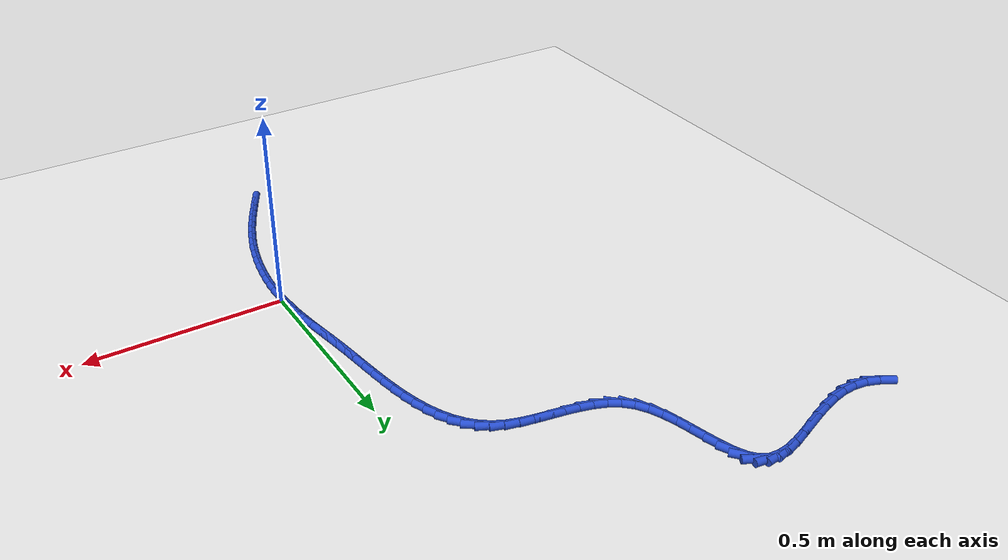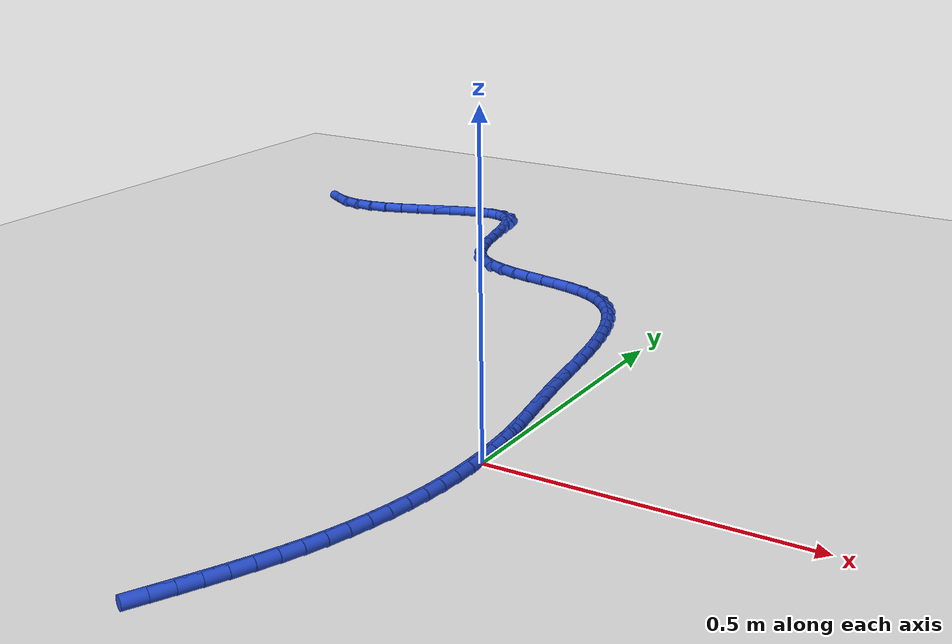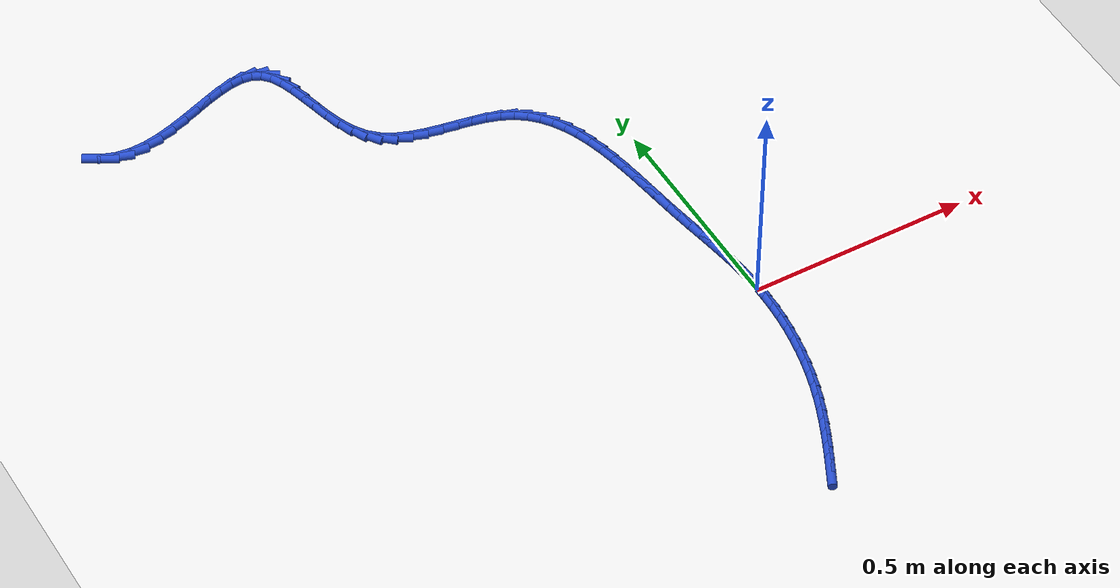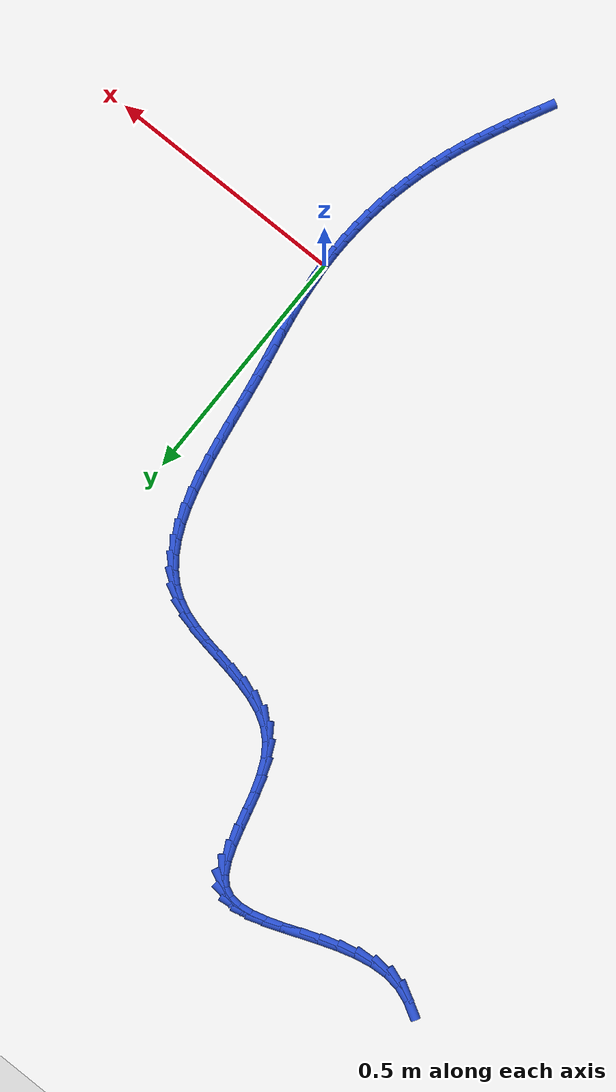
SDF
<sdf version="1.6">
 <world name="default">
  <model name="ground_plane">
   <static>1</static>
   <link name="link">
    <collision name="collision">
     <geometry><plane><normal>0 0 1</normal><size>100 100</size></plane></geometry>
     <surface><friction><ode><mu>100</mu><mu2>50</mu2></ode></friction></surface>
    </collision>
    <visual name="visual">
     <cast_shadows>0</cast_shadows>
     <geometry><plane><normal>0 0 1</normal><size>100 100</size></plane></geometry>
     <material>
      <script><uri>file://media/materials/scripts/gazebo.material</uri><name>Gazebo/WhiteGlow</name></script>
     </material>
    </visual>
   </link>
  </model>
  <model name="line">
   <link name="link_0">
    <pose>-1.0408340855860843e-17 4.85722573273506e-17 0.01 0 1.57 -1.5140892674336408</pose>
    <collision name="collision">
     <geometry><cylinder><radius>0.01</radius><length>0.08</length></cylinder></geometry>
    </collision>
    <visual name="visual">
     <material>
      <script><name>Gazebo/Blue</name><uri>file://media/materials/scripts/gazebo.material</uri></script>
     </material>
     <geometry><cylinder><radius>0.01</radius><length>0.08</length></cylinder></geometry>
    </visual>
   </link>
   <link name="link_1">
    <pose>-0.0017822990523047434 0.0313962357053206 0.01 0 1.57 -1.4762455724888102</pose>
    <collision name="collision">
     <geometry><cylinder><radius>0.01</radius><length>0.08</length></cylinder></geometry>
    </collision>
    <visual name="visual">
     <material>
      <script><name>Gazebo/Blue</name><uri>file://media/materials/scripts/gazebo.material</uri></script>
     </material>
     <geometry><cylinder><radius>0.01</radius><length>0.08</length></cylinder></geometry>
    </visual>
   </link>
   <link name="link_2">
    <pose>-0.004735691657988238 0.06253915381352197 0.01 0 1.57 -1.4450884632466419</pose>
    <collision name="collision">
     <geometry><cylinder><radius>0.01</radius><length>0.08</length></cylinder></geometry>
    </collision>
    <visual name="visual">
     <material>
      <script><name>Gazebo/Blue</name><uri>file://media/materials/scripts/gazebo.material</uri></script>
     </material>
     <geometry><cylinder><radius>0.01</radius><length>0.08</length></cylinder></geometry>
    </visual>
   </link>
   <link name="link_3">
    <pose>-0.008661138716409207 0.09360123603166874 0.01 0 1.57 -1.4211090032281013</pose>
    <collision name="collision">
     <geometry><cylinder><radius>0.01</radius><length>0.08</length></cylinder></geometry>
    </collision>
    <visual name="visual">
     <material>
      <script><name>Gazebo/Blue</name><uri>file://media/materials/scripts/gazebo.material</uri></script>
     </material>
     <geometry><cylinder><radius>0.01</radius><length>0.08</length></cylinder></geometry>
    </visual>
   </link>
   <link name="link_4">
    <pose>-0.013359601126926387 0.12475496406682555 0.01 0 1.57 -1.40452897458954</pose>
    <collision name="collision">
     <geometry><cylinder><radius>0.01</radius><length>0.08</length></cylinder></geometry>
    </collision>
    <visual name="visual">
     <material>
      <script><name>Gazebo/Blue</name><uri>file://media/materials/scripts/gazebo.material</uri></script>
     </material>
     <geometry><cylinder><radius>0.01</radius><length>0.08</length></cylinder></geometry>
    </visual>
   </link>
   <link name="link_5">
    <pose>-0.018632039788898498 0.1561728196260569 0.01 0 1.57 -1.3953326870396339</pose>
    <collision name="collision">
     <geometry><cylinder><radius>0.01</radius><length>0.08</length></cylinder></geometry>
    </collision>
    <visual name="visual">
     <material>
      <script><name>Gazebo/Blue</name><uri>file://media/materials/scripts/gazebo.material</uri></script>
     </material>
     <geometry><cylinder><radius>0.01</radius><length>0.08</length></cylinder></geometry>
    </visual>
   </link>
   <link name="link_6">
    <pose>-0.024279415601684257 0.1880272844164274 0.01 0 1.57 -1.3933051526836118</pose>
    <collision name="collision">
     <geometry><cylinder><radius>0.01</radius><length>0.08</length></cylinder></geometry>
    </collision>
    <visual name="visual">
     <material>
      <script><name>Gazebo/Blue</name><uri>file://media/materials/scripts/gazebo.material</uri></script>
     </material>
     <geometry><cylinder><radius>0.01</radius><length>0.08</length></cylinder></geometry>
    </visual>
   </link>
   <link name="link_7">
    <pose>-0.030102689464642396 0.22049084014500175 0.01 0 1.57 -1.3980691826053695</pose>
    <collision name="collision">
     <geometry><cylinder><radius>0.01</radius><length>0.08</length></cylinder></geometry>
    </collision>
    <visual name="visual">
     <material>
      <script><name>Gazebo/Blue</name><uri>file://media/materials/scripts/gazebo.material</uri></script>
     </material>
     <geometry><cylinder><radius>0.01</radius><length>0.08</length></cylinder></geometry>
    </visual>
   </link>
   <link name="link_8">
    <pose>-0.035902822277131645 0.2537359685188444 0.01 0 1.57 -1.409102124069572</pose>
    <collision name="collision">
     <geometry><cylinder><radius>0.01</radius><length>0.08</length></cylinder></geometry>
    </collision>
    <visual name="visual">
     <material>
      <script><name>Gazebo/Blue</name><uri>file://media/materials/scripts/gazebo.material</uri></script>
     </material>
     <geometry><cylinder><radius>0.01</radius><length>0.08</length></cylinder></geometry>
    </visual>
   </link>
   <link name="link_9">
    <pose>-0.04148124559726623 0.287934611946852 0.01 0 1.57 -1.4214969574494418</pose>
    <collision name="collision">
     <geometry><cylinder><radius>0.01</radius><length>0.08</length></cylinder></geometry>
    </collision>
    <visual name="visual">
     <material>
      <script><name>Gazebo/Blue</name><uri>file://media/materials/scripts/gazebo.material</uri></script>
     </material>
     <geometry><cylinder><radius>0.01</radius><length>0.08</length></cylinder></geometry>
    </visual>
   </link>
   <link name="link_10">
    <pose>-0.046771823977987105 0.3231069662260764 0.01 0 1.57 -1.425215076478316</pose>
    <collision name="collision">
     <geometry><cylinder><radius>0.01</radius><length>0.08</length></cylinder></geometry>
    </collision>
    <visual name="visual">
     <material>
      <script><name>Gazebo/Blue</name><uri>file://media/materials/scripts/gazebo.material</uri></script>
     </material>
     <geometry><cylinder><radius>0.01</radius><length>0.08</length></cylinder></geometry>
    </visual>
   </link>
   <link name="link_11">
    <pose>-0.05202181707179196 0.35891412748517626 0.01 0 1.57 -1.4193484649039652</pose>
    <collision name="collision">
     <geometry><cylinder><radius>0.01</radius><length>0.08</length></cylinder></geometry>
    </collision>
    <visual name="visual">
     <material>
      <script><name>Gazebo/Blue</name><uri>file://media/materials/scripts/gazebo.material</uri></script>
     </material>
     <geometry><cylinder><radius>0.01</radius><length>0.08</length></cylinder></geometry>
    </visual>
   </link>
   <link name="link_12">
    <pose>-0.05752381283932963 0.3949652530048548 0.01 0 1.57 -1.4039532100160061</pose>
    <collision name="collision">
     <geometry><cylinder><radius>0.01</radius><length>0.08</length></cylinder></geometry>
    </collision>
    <visual name="visual">
     <material>
      <script><name>Gazebo/Blue</name><uri>file://media/materials/scripts/gazebo.material</uri></script>
     </material>
     <geometry><cylinder><radius>0.01</radius><length>0.08</length></cylinder></geometry>
    </visual>
   </link>
   <link name="link_13">
    <pose>-0.06357039924124894 0.4308695000658154 0.01 0 1.57 -1.378559220523546</pose>
    <collision name="collision">
     <geometry><cylinder><radius>0.01</radius><length>0.08</length></cylinder></geometry>
    </collision>
    <visual name="visual">
     <material>
      <script><name>Gazebo/Blue</name><uri>file://media/materials/scripts/gazebo.material</uri></script>
     </material>
     <geometry><cylinder><radius>0.01</radius><length>0.08</length></cylinder></geometry>
    </visual>
   </link>
   <link name="link_14">
    <pose>-0.07045416423819872 0.4662360259487611 0.01 0 1.57 -1.3421701288273173</pose>
    <collision name="collision">
     <geometry><cylinder><radius>0.01</radius><length>0.08</length></cylinder></geometry>
    </collision>
    <visual name="visual">
     <material>
      <script><name>Gazebo/Blue</name><uri>file://media/materials/scripts/gazebo.material</uri></script>
     </material>
     <geometry><cylinder><radius>0.01</radius><length>0.08</length></cylinder></geometry>
    </visual>
   </link>
   <link name="link_15">
    <pose>-0.07846769579082782 0.5006739879343955 0.01 0 1.57 -1.2932382194072782</pose>
    <collision name="collision">
     <geometry><cylinder><radius>0.01</radius><length>0.08</length></cylinder></geometry>
    </collision>
    <visual name="visual">
     <material>
      <script><name>Gazebo/Blue</name><uri>file://media/materials/scripts/gazebo.material</uri></script>
     </material>
     <geometry><cylinder><radius>0.01</radius><length>0.08</length></cylinder></geometry>
    </visual>
   </link>
   <link name="link_16">
    <pose>-0.0879035818597851 0.5337925433034216 0.01 0 1.57 -1.2296492479981362</pose>
    <collision name="collision">
     <geometry><cylinder><radius>0.01</radius><length>0.08</length></cylinder></geometry>
    </collision>
    <visual name="visual">
     <material>
      <script><name>Gazebo/Blue</name><uri>file://media/materials/scripts/gazebo.material</uri></script>
     </material>
     <geometry><cylinder><radius>0.01</radius><length>0.08</length></cylinder></geometry>
    </visual>
   </link>
   <link name="link_17">
    <pose>-0.09905441040571937 0.5652008493365427 0.01 0 1.57 -1.1487907853533612</pose>
    <collision name="collision">
     <geometry><cylinder><radius>0.01</radius><length>0.08</length></cylinder></geometry>
    </collision>
    <visual name="visual">
     <material>
      <script><name>Gazebo/Blue</name><uri>file://media/materials/scripts/gazebo.material</uri></script>
     </material>
     <geometry><cylinder><radius>0.01</radius><length>0.08</length></cylinder></geometry>
    </visual>
   </link>
   <link name="link_18">
    <pose>-0.11221276938927945 0.5945080633144622 0.01 0 1.57 -1.0478503527564522</pose>
    <collision name="collision">
     <geometry><cylinder><radius>0.01</radius><length>0.08</length></cylinder></geometry>
    </collision>
    <visual name="visual">
     <material>
      <script><name>Gazebo/Blue</name><uri>file://media/materials/scripts/gazebo.material</uri></script>
     </material>
     <geometry><cylinder><radius>0.01</radius><length>0.08</length></cylinder></geometry>
    </visual>
   </link>
   <link name="link_19">
    <pose>-0.1276712467711142 0.621323342517883 0.01 0 1.57 -0.924578249994057</pose>
    <collision name="collision">
     <geometry><cylinder><radius>0.01</radius><length>0.08</length></cylinder></geometry>
    </collision>
    <visual name="visual">
     <material>
      <script><name>Gazebo/Blue</name><uri>file://media/materials/scripts/gazebo.material</uri></script>
     </material>
     <geometry><cylinder><radius>0.01</radius><length>0.08</length></cylinder></geometry>
    </visual>
   </link>
   <link name="link_20">
    <pose>-0.14572243051187242 0.6452558442275088 0.01 0 1.57 -0.7787245237031976</pose>
    <collision name="collision">
     <geometry><cylinder><radius>0.01</radius><length>0.08</length></cylinder></geometry>
    </collision>
    <visual name="visual">
     <material>
      <script><name>Gazebo/Blue</name><uri>file://media/materials/scripts/gazebo.material</uri></script>
     </material>
     <geometry><cylinder><radius>0.01</radius><length>0.08</length></cylinder></geometry>
    </visual>
   </link>
   <link name="link_21">
    <pose>-0.16665890857220295 0.6659147257240425 0.01 0 1.57 -0.6139018739002147</pose>
    <collision name="collision">
     <geometry><cylinder><radius>0.01</radius><length>0.08</length></cylinder></geometry>
    </collision>
    <visual name="visual">
     <material>
      <script><name>Gazebo/Blue</name><uri>file://media/materials/scripts/gazebo.material</uri></script>
     </material>
     <geometry><cylinder><radius>0.01</radius><length>0.08</length></cylinder></geometry>
    </visual>
   </link>
   <link name="link_22">
    <pose>-0.1907732689127547 0.6829091442881876 0.01 0 1.57 -0.4415854745839687</pose>
    <collision name="collision">
     <geometry><cylinder><radius>0.01</radius><length>0.08</length></cylinder></geometry>
    </collision>
    <visual name="visual">
     <material>
      <script><name>Gazebo/Blue</name><uri>file://media/materials/scripts/gazebo.material</uri></script>
     </material>
     <geometry><cylinder><radius>0.01</radius><length>0.08</length></cylinder></geometry>
    </visual>
   </link>
   <link name="link_23">
    <pose>-0.21830001495683102 0.6959215559074463 0.01 0 1.57 -0.303847111143719</pose>
    <collision name="collision">
     <geometry><cylinder><radius>0.01</radius><length>0.08</length></cylinder></geometry>
    </collision>
    <visual name="visual">
     <material>
      <script><name>Gazebo/Blue</name><uri>file://media/materials/scripts/gazebo.material</uri></script>
     </material>
     <geometry><cylinder><radius>0.01</radius><length>0.08</length></cylinder></geometry>
    </visual>
   </link>
   <link name="link_24">
    <pose>-0.24879967724428598 0.7054849241748193 0.01 0 1.57 -0.21723763861743337</pose>
    <collision name="collision">
     <geometry><cylinder><radius>0.01</radius><length>0.08</length></cylinder></geometry>
    </collision>
    <visual name="visual">
     <material>
      <script><name>Gazebo/Blue</name><uri>file://media/materials/scripts/gazebo.material</uri></script>
     </material>
     <geometry><cylinder><radius>0.01</radius><length>0.08</length></cylinder></geometry>
    </visual>
   </link>
   <link name="link_25">
    <pose>-0.28139856258502693 0.7126801732821364 0.01 0 1.57 -0.1732210524831926</pose>
    <collision name="collision">
     <geometry><cylinder><radius>0.01</radius><length>0.08</length></cylinder></geometry>
    </collision>
    <visual name="visual">
     <material>
      <script><name>Gazebo/Blue</name><uri>file://media/materials/scripts/gazebo.material</uri></script>
     </material>
     <geometry><cylinder><radius>0.01</radius><length>0.08</length></cylinder></geometry>
    </visual>
   </link>
   <link name="link_26">
    <pose>-0.3152157675230457 0.7185973262828409 0.01 0 1.57 -0.16619235850822497</pose>
    <collision name="collision">
     <geometry><cylinder><radius>0.01</radius><length>0.08</length></cylinder></geometry>
    </collision>
    <visual name="visual">
     <material>
      <script><name>Gazebo/Blue</name><uri>file://media/materials/scripts/gazebo.material</uri></script>
     </material>
     <geometry><cylinder><radius>0.01</radius><length>0.08</length></cylinder></geometry>
    </visual>
   </link>
   <link name="link_27">
    <pose>-0.34937038860233427 0.7243264062303774 0.01 0 1.57 -0.19478526958126113</pose>
    <collision name="collision">
     <geometry><cylinder><radius>0.01</radius><length>0.08</length></cylinder></geometry>
    </collision>
    <visual name="visual">
     <material>
      <script><name>Gazebo/Blue</name><uri>file://media/materials/scripts/gazebo.material</uri></script>
     </material>
     <geometry><cylinder><radius>0.01</radius><length>0.08</length></cylinder></geometry>
    </visual>
   </link>
   <link name="link_28">
    <pose>-0.38298152236688415 0.730957436178189 0.01 0 1.57 -0.261758550055799</pose>
    <collision name="collision">
     <geometry><cylinder><radius>0.01</radius><length>0.08</length></cylinder></geometry>
    </collision>
    <visual name="visual">
     <material>
      <script><name>Gazebo/Blue</name><uri>file://media/materials/scripts/gazebo.material</uri></script>
     </material>
     <geometry><cylinder><radius>0.01</radius><length>0.08</length></cylinder></geometry>
    </visual>
   </link>
   <link name="link_29">
    <pose>-0.4151682653606876 0.7395804391797203 0.01 0 1.57 -0.37334342968593964</pose>
    <collision name="collision">
     <geometry><cylinder><radius>0.01</radius><length>0.08</length></cylinder></geometry>
    </collision>
    <visual name="visual">
     <material>
      <script><name>Gazebo/Blue</name><uri>file://media/materials/scripts/gazebo.material</uri></script>
     </material>
     <geometry><cylinder><radius>0.01</radius><length>0.08</length></cylinder></geometry>
    </visual>
   </link>
   <link name="link_30">
    <pose>-0.4450497141277363 0.7512854382884149 0.01 0 1.57 -0.5365507530079408</pose>
    <collision name="collision">
     <geometry><cylinder><radius>0.01</radius><length>0.08</length></cylinder></geometry>
    </collision>
    <visual name="visual">
     <material>
      <script><name>Gazebo/Blue</name><uri>file://media/materials/scripts/gazebo.material</uri></script>
     </material>
     <geometry><cylinder><radius>0.01</radius><length>0.08</length></cylinder></geometry>
    </visual>
   </link>
   <link name="link_31">
    <pose>-0.47174496521202197 0.7671624565577166 0.01 0 1.57 -0.751378900271499</pose>
    <collision name="collision">
     <geometry><cylinder><radius>0.01</radius><length>0.08</length></cylinder></geometry>
    </collision>
    <visual name="visual">
     <material>
      <script><name>Gazebo/Blue</name><uri>file://media/materials/scripts/gazebo.material</uri></script>
     </material>
     <geometry><cylinder><radius>0.01</radius><length>0.08</length></cylinder></geometry>
    </visual>
   </link>
   <link name="link_32">
    <pose>-0.49437328444214507 0.7883012753539985 0.01 0 1.57 -0.9794375298426329</pose>
    <collision name="collision">
     <geometry><cylinder><radius>0.01</radius><length>0.08</length></cylinder></geometry>
    </collision>
    <visual name="visual">
     <material>
      <script><name>Gazebo/Blue</name><uri>file://media/materials/scripts/gazebo.material</uri></script>
     </material>
     <geometry><cylinder><radius>0.01</radius><length>0.08</length></cylinder></geometry>
    </visual>
   </link>
   <link name="link_33">
    <pose>-0.512452076773353 0.815223254139059 0.01 0 1.57 -1.144041291427519</pose>
    <collision name="collision">
     <geometry><cylinder><radius>0.01</radius><length>0.08</length></cylinder></geometry>
    </collision>
    <visual name="visual">
     <material>
      <script><name>Gazebo/Blue</name><uri>file://media/materials/scripts/gazebo.material</uri></script>
     </material>
     <geometry><cylinder><radius>0.01</radius><length>0.08</length></cylinder></geometry>
    </visual>
   </link>
   <link name="link_34">
    <pose>-0.5267487053594899 0.846665191219239 0.01 0 1.57 -1.2470378099294164</pose>
    <collision name="collision">
     <geometry><cylinder><radius>0.01</radius><length>0.08</length></cylinder></geometry>
    </collision>
    <visual name="visual">
     <material>
      <script><name>Gazebo/Blue</name><uri>file://media/materials/scripts/gazebo.material</uri></script>
     </material>
     <geometry><cylinder><radius>0.01</radius><length>0.08</length></cylinder></geometry>
    </visual>
   </link>
   <link name="link_35">
    <pose>-0.5382751914088753 0.8810145874116686 0.01 0 1.57 -1.3033127828432685</pose>
    <collision name="collision">
     <geometry><cylinder><radius>0.01</radius><length>0.08</length></cylinder></geometry>
    </collision>
    <visual name="visual">
     <material>
      <script><name>Gazebo/Blue</name><uri>file://media/materials/scripts/gazebo.material</uri></script>
     </material>
     <geometry><cylinder><radius>0.01</radius><length>0.08</length></cylinder></geometry>
    </visual>
   </link>
   <link name="link_36">
    <pose>-0.5480435561298285 0.9166589435334778 0.01 0 1.57 -1.3207472361059984</pose>
    <collision name="collision">
     <geometry><cylinder><radius>0.01</radius><length>0.08</length></cylinder></geometry>
    </collision>
    <visual name="visual">
     <material>
      <script><name>Gazebo/Blue</name><uri>file://media/materials/scripts/gazebo.material</uri></script>
     </material>
     <geometry><cylinder><radius>0.01</radius><length>0.08</length></cylinder></geometry>
    </visual>
   </link>
   <link name="link_37">
    <pose>-0.5570658207306691 0.9519857604017972 0.01 0 1.57 -1.2995353078400214</pose>
    <collision name="collision">
     <geometry><cylinder><radius>0.01</radius><length>0.08</length></cylinder></geometry>
    </collision>
    <visual name="visual">
     <material>
      <script><name>Gazebo/Blue</name><uri>file://media/materials/scripts/gazebo.material</uri></script>
     </material>
     <geometry><cylinder><radius>0.01</radius><length>0.08</length></cylinder></geometry>
    </visual>
   </link>
   <link name="link_38">
    <pose>-0.566354006419717 0.985382538833757 0.01 0 1.57 -1.2306301543189473</pose>
    <collision name="collision">
     <geometry><cylinder><radius>0.01</radius><length>0.08</length></cylinder></geometry>
    </collision>
    <visual name="visual">
     <material>
      <script><name>Gazebo/Blue</name><uri>file://media/materials/scripts/gazebo.material</uri></script>
     </material>
     <geometry><cylinder><radius>0.01</radius><length>0.08</length></cylinder></geometry>
    </visual>
   </link>
   <link name="link_39">
    <pose>-0.5769201344052914 1.0152367796464876 0.01 0 1.57 -1.0908785751996821</pose>
    <collision name="collision">
     <geometry><cylinder><radius>0.01</radius><length>0.08</length></cylinder></geometry>
    </collision>
    <visual name="visual">
     <material>
      <script><name>Gazebo/Blue</name><uri>file://media/materials/scripts/gazebo.material</uri></script>
     </material>
     <geometry><cylinder><radius>0.01</radius><length>0.08</length></cylinder></geometry>
    </visual>
   </link>
   <link name="link_40">
    <pose>-0.589776225895712 1.039935983657119 0.01 0 1.57 -0.8373784345812626</pose>
    <collision name="collision">
     <geometry><cylinder><radius>0.01</radius><length>0.08</length></cylinder></geometry>
    </collision>
    <visual name="visual">
     <material>
      <script><name>Gazebo/Blue</name><uri>file://media/materials/scripts/gazebo.material</uri></script>
     </material>
     <geometry><cylinder><radius>0.01</radius><length>0.08</length></cylinder></geometry>
    </visual>
   </link>
   <link name="link_41">
    <pose>-0.6059343020992981 1.0578676516827814 0.01 0 1.57 -0.4551619494992559</pose>
    <collision name="collision">
     <geometry><cylinder><radius>0.01</radius><length>0.08</length></cylinder></geometry>
    </collision>
    <visual name="visual">
     <material>
      <script><name>Gazebo/Blue</name><uri>file://media/materials/scripts/gazebo.material</uri></script>
     </material>
     <geometry><cylinder><radius>0.01</radius><length>0.08</length></cylinder></geometry>
    </visual>
   </link>
   <link name="link_42">
    <pose>-0.6262105241636294 1.0677915948566767 0.01 0 1.57 -0.10840177283015996</pose>
    <collision name="collision">
     <geometry><cylinder><radius>0.01</radius><length>0.08</length></cylinder></geometry>
    </collision>
    <visual name="visual">
     <material>
      <script><name>Gazebo/Blue</name><uri>file://media/materials/scripts/gazebo.material</uri></script>
     </material>
     <geometry><cylinder><radius>0.01</radius><length>0.08</length></cylinder></geometry>
    </visual>
   </link>
   <link name="link_43">
    <pose>-0.6503922614195509 1.0704232542909442 0.01 0 1.57 0.11945580834634709</pose>
    <collision name="collision">
     <geometry><cylinder><radius>0.01</radius><length>0.08</length></cylinder></geometry>
    </collision>
    <visual name="visual">
     <material>
      <script><name>Gazebo/Blue</name><uri>file://media/materials/scripts/gazebo.material</uri></script>
     </material>
     <geometry><cylinder><radius>0.01</radius><length>0.08</length></cylinder></geometry>
    </visual>
   </link>
   <link name="link_44">
    <pose>-0.6779302681394077 1.0671179425362949 0.01 0 1.57 0.2542738200076538</pose>
    <collision name="collision">
     <geometry><cylinder><radius>0.01</radius><length>0.08</length></cylinder></geometry>
    </collision>
    <visual name="visual">
     <material>
      <script><name>Gazebo/Blue</name><uri>file://media/materials/scripts/gazebo.material</uri></script>
     </material>
     <geometry><cylinder><radius>0.01</radius><length>0.08</length></cylinder></geometry>
    </visual>
   </link>
   <link name="link_45">
    <pose>-0.708275106404956 1.0592313374784559 0.01 0 1.57 0.32849335379676337</pose>
    <collision name="collision">
     <geometry><cylinder><radius>0.01</radius><length>0.08</length></cylinder></geometry>
    </collision>
    <visual name="visual">
     <material>
      <script><name>Gazebo/Blue</name><uri>file://media/materials/scripts/gazebo.material</uri></script>
     </material>
     <geometry><cylinder><radius>0.01</radius><length>0.08</length></cylinder></geometry>
    </visual>
   </link>
   <link name="link_46">
    <pose>-0.7408773382979535 1.0481191170031552 0.01 0 1.57 0.36172732578223527</pose>
    <collision name="collision">
     <geometry><cylinder><radius>0.01</radius><length>0.08</length></cylinder></geometry>
    </collision>
    <visual name="visual">
     <material>
      <script><name>Gazebo/Blue</name><uri>file://media/materials/scripts/gazebo.material</uri></script>
     </material>
     <geometry><cylinder><radius>0.01</radius><length>0.08</length></cylinder></geometry>
    </visual>
   </link>
   <link name="link_47">
    <pose>-0.7751875259001574 1.0351369589961203 0.01 0 1.57 0.36359801487771587</pose>
    <collision name="collision">
     <geometry><cylinder><radius>0.01</radius><length>0.08</length></cylinder></geometry>
    </collision>
    <visual name="visual">
     <material>
      <script><name>Gazebo/Blue</name><uri>file://media/materials/scripts/gazebo.material</uri></script>
     </material>
     <geometry><cylinder><radius>0.01</radius><length>0.08</length></cylinder></geometry>
    </visual>
   </link>
   <link name="link_48">
    <pose>-0.8106562312933241 1.0216405413430785 0.01 0 1.57 0.3373604920326366</pose>
    <collision name="collision">
     <geometry><cylinder><radius>0.01</radius><length>0.08</length></cylinder></geometry>
    </collision>
    <visual name="visual">
     <material>
      <script><name>Gazebo/Blue</name><uri>file://media/materials/scripts/gazebo.material</uri></script>
     </material>
     <geometry><cylinder><radius>0.01</radius><length>0.08</length></cylinder></geometry>
    </visual>
   </link>
   <link name="link_49">
    <pose>-0.8467340165592113 1.0089855419297573 0.01 0 1.57 0.28169703186375755</pose>
    <collision name="collision">
     <geometry><cylinder><radius>0.01</radius><length>0.08</length></cylinder></geometry>
    </collision>
    <visual name="visual">
     <material>
      <script><name>Gazebo/Blue</name><uri>file://media/materials/scripts/gazebo.material</uri></script>
     </material>
     <geometry><cylinder><radius>0.01</radius><length>0.08</length></cylinder></geometry>
    </visual>
   </link>
   <link name="link_50">
    <pose>-0.8828714437795754 0.998527638641884 0.01 0 1.57 0.1913355445748253</pose>
    <collision name="collision">
     <geometry><cylinder><radius>0.01</radius><length>0.08</length></cylinder></geometry>
    </collision>
    <visual name="visual">
     <material>
      <script><name>Gazebo/Blue</name><uri>file://media/materials/scripts/gazebo.material</uri></script>
     </material>
     <geometry><cylinder><radius>0.01</radius><length>0.08</length></cylinder></geometry>
    </visual>
   </link>
   <link name="link_51">
    <pose>-0.9185190750361738 0.9916225093651863 0.01 0 1.57 0.05762955264114487</pose>
    <collision name="collision">
     <geometry><cylinder><radius>0.01</radius><length>0.08</length></cylinder></geometry>
    </collision>
    <visual name="visual">
     <material>
      <script><name>Gazebo/Blue</name><uri>file://media/materials/scripts/gazebo.material</uri></script>
     </material>
     <geometry><cylinder><radius>0.01</radius><length>0.08</length></cylinder></geometry>
    </visual>
   </link>
   <link name="link_52">
    <pose>-0.9531274724107635 0.9896258319853914 0.01 0 1.57 -0.1285162788359451</pose>
    <collision name="collision">
     <geometry><cylinder><radius>0.01</radius><length>0.08</length></cylinder></geometry>
    </collision>
    <visual name="visual">
     <material>
      <script><name>Gazebo/Blue</name><uri>file://media/materials/scripts/gazebo.material</uri></script>
     </material>
     <geometry><cylinder><radius>0.01</radius><length>0.08</length></cylinder></geometry>
    </visual>
   </link>
   <link name="link_53">
    <pose>-0.9861472942064398 0.9938929349600233 0.01 0 1.57 -0.346181371847614</pose>
    <collision name="collision">
     <geometry><cylinder><radius>0.01</radius><length>0.08</length></cylinder></geometry>
    </collision>
    <visual name="visual">
     <material>
      <script><name>Gazebo/Blue</name><uri>file://media/materials/scripts/gazebo.material</uri></script>
     </material>
     <geometry><cylinder><radius>0.01</radius><length>0.08</length></cylinder></geometry>
    </visual>
   </link>
   <link name="link_54">
    <pose>-1.017216285767238 1.0050997393516479 0.01 0 1.57 -0.5182064989716741</pose>
    <collision name="collision">
     <geometry><cylinder><radius>0.01</radius><length>0.08</length></cylinder></geometry>
    </collision>
    <visual name="visual">
     <material>
      <script><name>Gazebo/Blue</name><uri>file://media/materials/scripts/gazebo.material</uri></script>
     </material>
     <geometry><cylinder><radius>0.01</radius><length>0.08</length></cylinder></geometry>
    </visual>
   </link>
   <link name="link_204">
    <pose>-0.1340003013874645 -0.4929956538327186 0.01 0 1.57 1.0969571021750297</pose>
    <collision name="collision">
     <geometry><cylinder><radius>0.01</radius><length>0.08</length></cylinder></geometry>
    </collision>
    <visual name="visual">
     <material>
      <script><name>Gazebo/Blue</name><uri>file://media/materials/scripts/gazebo.material</uri></script>
     </material>
     <geometry><cylinder><radius>0.01</radius><length>0.08</length></cylinder></geometry>
    </visual>
   </link>
   <link name="link_205">
    <pose>-0.11919093167118329 -0.46411652144488186 0.01 0 1.57 1.1069057773945572</pose>
    <collision name="collision">
     <geometry><cylinder><radius>0.01</radius><length>0.08</length></cylinder></geometry>
    </collision>
    <visual name="visual">
     <material>
      <script><name>Gazebo/Blue</name><uri>file://media/materials/scripts/gazebo.material</uri></script>
     </material>
     <geometry><cylinder><radius>0.01</radius><length>0.08</length></cylinder></geometry>
    </visual>
   </link>
   <link name="link_206">
    <pose>-0.1047372022855368 -0.43522661112143873 0.01 0 1.57 1.1218623695732441</pose>
    <collision name="collision">
     <geometry><cylinder><radius>0.01</radius><length>0.08</length></cylinder></geometry>
    </collision>
    <visual name="visual">
     <material>
      <script><name>Gazebo/Blue</name><uri>file://media/materials/scripts/gazebo.material</uri></script>
     </material>
     <geometry><cylinder><radius>0.01</radius><length>0.08</length></cylinder></geometry>
    </visual>
   </link>
   <link name="link_207">
    <pose>-0.09076803110445138 -0.40622934342270217 0.01 0 1.57 1.1418321294264624</pose>
    <collision name="collision">
     <geometry><cylinder><radius>0.01</radius><length>0.08</length></cylinder></geometry>
    </collision>
    <visual name="visual">
     <material>
      <script><name>Gazebo/Blue</name><uri>file://media/materials/scripts/gazebo.material</uri></script>
     </material>
     <geometry><cylinder><radius>0.01</radius><length>0.08</length></cylinder></geometry>
    </visual>
   </link>
   <link name="link_208">
    <pose>-0.0774123360018544 -0.3770281389089872 0.01 0 1.57 1.1667723633434315</pose>
    <collision name="collision">
     <geometry><cylinder><radius>0.01</radius><length>0.08</length></cylinder></geometry>
    </collision>
    <visual name="visual">
     <material>
      <script><name>Gazebo/Blue</name><uri>file://media/materials/scripts/gazebo.material</uri></script>
     </material>
     <geometry><cylinder><radius>0.01</radius><length>0.08</length></cylinder></geometry>
    </visual>
   </link>
   <link name="link_209">
    <pose>-0.06479903485167224 -0.3475264181406065 0.01 0 1.57 1.1965778683077477</pose>
    <collision name="collision">
     <geometry><cylinder><radius>0.01</radius><length>0.08</length></cylinder></geometry>
    </collision>
    <visual name="visual">
     <material>
      <script><name>Gazebo/Blue</name><uri>file://media/materials/scripts/gazebo.material</uri></script>
     </material>
     <geometry><cylinder><radius>0.01</radius><length>0.08</length></cylinder></geometry>
    </visual>
   </link>
   <link name="link_210">
    <pose>-0.05305704552783161 -0.3176276016778739 0.01 0 1.57 1.231064968665092</pose>
    <collision name="collision">
     <geometry><cylinder><radius>0.01</radius><length>0.08</length></cylinder></geometry>
    </collision>
    <visual name="visual">
     <material>
      <script><name>Gazebo/Blue</name><uri>file://media/materials/scripts/gazebo.material</uri></script>
     </material>
     <geometry><cylinder><radius>0.01</radius><length>0.08</length></cylinder></geometry>
    </visual>
   </link>
   <link name="link_211">
    <pose>-0.04231528590425922 -0.28723511008110303 0.01 0 1.57 1.26949312803995</pose>
    <collision name="collision">
     <geometry><cylinder><radius>0.01</radius><length>0.08</length></cylinder></geometry>
    </collision>
    <visual name="visual">
     <material>
      <script><name>Gazebo/Blue</name><uri>file://media/materials/scripts/gazebo.material</uri></script>
     </material>
     <geometry><cylinder><radius>0.01</radius><length>0.08</length></cylinder></geometry>
    </visual>
   </link>
   <link name="link_212">
    <pose>-0.03269306512000913 -0.25627206969279415 0.01 0 1.57 1.308513365386799</pose>
    <collision name="collision">
     <geometry><cylinder><radius>0.01</radius><length>0.08</length></cylinder></geometry>
    </collision>
    <visual name="visual">
     <material>
      <script><name>Gazebo/Blue</name><uri>file://media/materials/scripts/gazebo.material</uri></script>
     </material>
     <geometry><cylinder><radius>0.01</radius><length>0.08</length></cylinder></geometry>
    </visual>
   </link>
   <link name="link_213">
    <pose>-0.024243258543611763 -0.22479785053676954 0.01 0 1.57 1.3470285386050256</pose>
    <collision name="collision">
     <geometry><cylinder><radius>0.01</radius><length>0.08</length></cylinder></geometry>
    </collision>
    <visual name="visual">
     <material>
      <script><name>Gazebo/Blue</name><uri>file://media/materials/scripts/gazebo.material</uri></script>
     </material>
     <geometry><cylinder><radius>0.01</radius><length>0.08</length></cylinder></geometry>
    </visual>
   </link>
   <link name="link_214">
    <pose>-0.016990668280164888 -0.19292939583684166 0.01 0 1.57 1.3853467304277478</pose>
    <collision name="collision">
     <geometry><cylinder><radius>0.01</radius><length>0.08</length></cylinder></geometry>
    </collision>
    <visual name="visual">
     <material>
      <script><name>Gazebo/Blue</name><uri>file://media/materials/scripts/gazebo.material</uri></script>
     </material>
     <geometry><cylinder><radius>0.01</radius><length>0.08</length></cylinder></geometry>
    </visual>
   </link>
   <link name="link_215">
    <pose>-0.010959996664106991 -0.16078385342845145 0.01 0 1.57 1.4237769381235854</pose>
    <collision name="collision">
     <geometry><cylinder><radius>0.01</radius><length>0.08</length></cylinder></geometry>
    </collision>
    <visual name="visual">
     <material>
      <script><name>Gazebo/Blue</name><uri>file://media/materials/scripts/gazebo.material</uri></script>
     </material>
     <geometry><cylinder><radius>0.01</radius><length>0.08</length></cylinder></geometry>
    </visual>
   </link>
   <link name="link_216">
    <pose>-0.006175946029876483 -0.12847837114703922 0.01 0 1.57 1.4626292937177363</pose>
    <collision name="collision">
     <geometry><cylinder><radius>0.01</radius><length>0.08</length></cylinder></geometry>
    </collision>
    <visual name="visual">
     <material>
      <script><name>Gazebo/Blue</name><uri>file://media/materials/scripts/gazebo.material</uri></script>
     </material>
     <geometry><cylinder><radius>0.01</radius><length>0.08</length></cylinder></geometry>
    </visual>
   </link>
   <link name="link_217">
    <pose>-0.002663218711912099 -0.09613009682804742 0.01 0 1.57 1.5022200322173478</pose>
    <collision name="collision">
     <geometry><cylinder><radius>0.01</radius><length>0.08</length></cylinder></geometry>
    </collision>
    <visual name="visual">
     <material>
      <script><name>Gazebo/Blue</name><uri>file://media/materials/scripts/gazebo.material</uri></script>
     </material>
     <geometry><cylinder><radius>0.01</radius><length>0.08</length></cylinder></geometry>
    </visual>
   </link>
   <link name="link_218">
    <pose>-0.0004465170446522142 -0.06385617830691644 0.01 0 1.57 1.5428763319465701</pose>
    <collision name="collision">
     <geometry><cylinder><radius>0.01</radius><length>0.08</length></cylinder></geometry>
    </collision>
    <visual name="visual">
     <material>
      <script><name>Gazebo/Blue</name><uri>file://media/materials/scripts/gazebo.material</uri></script>
     </material>
     <geometry><cylinder><radius>0.01</radius><length>0.08</length></cylinder></geometry>
    </visual>
   </link>
   <link name="link_219">
    <pose>0.00044945663746465917 -0.03177376341908712 0.01 0 1.57 -1.556651742881885</pose>
    <collision name="collision">
     <geometry><cylinder><radius>0.01</radius><length>0.08</length></cylinder></geometry>
    </collision>
    <visual name="visual">
     <material>
      <script><name>Gazebo/Blue</name><uri>file://media/materials/scripts/gazebo.material</uri></script>
     </material>
     <geometry><cylinder><radius>0.01</radius><length>0.08</length></cylinder></geometry>
    </visual>
   </link>
   <link name="link_220">
    <pose>-1.734723475976807e-18 1.8735013540549517e-16 0.01 0 1.57 -1.5128164886182114</pose>
    <collision name="collision">
     <geometry><cylinder><radius>0.01</radius><length>0.08</length></cylinder></geometry>
    </collision>
    <visual name="visual">
     <material>
      <script><name>Gazebo/Blue</name><uri>file://media/materials/scripts/gazebo.material</uri></script>
     </material>
     <geometry><cylinder><radius>0.01</radius><length>0.08</length></cylinder></geometry>
    </visual>
   </link>
   <link name="link_221">
    <pose>-0.0018195892914846298 0.03134796411490221 0.01 0 1.57 -1.4668251690201208</pose>
    <collision name="collision">
     <geometry><cylinder><radius>0.01</radius><length>0.08</length></cylinder></geometry>
    </collision>
    <visual name="visual">
     <material>
      <script><name>Gazebo/Blue</name><uri>file://media/materials/scripts/gazebo.material</uri></script>
     </material>
     <geometry><cylinder><radius>0.01</radius><length>0.08</length></cylinder></geometry>
    </visual>
   </link>
   <link name="link_222">
    <pose>-0.0050340135714279 0.06215298109018097 0.01 0 1.57 -1.4899788201695578</pose>
    <collision name="collision">
     <geometry><cylinder><radius>0.01</radius><length>0.08</length></cylinder></geometry>
    </collision>
    <visual name="visual">
     <material>
      <script><name>Gazebo/Blue</name><uri>file://media/materials/scripts/gazebo.material</uri></script>
     </material>
     <geometry><cylinder><radius>0.01</radius><length>0.08</length></cylinder></geometry>
    </visual>
   </link>
  </model>
 </world>
</sdf>
